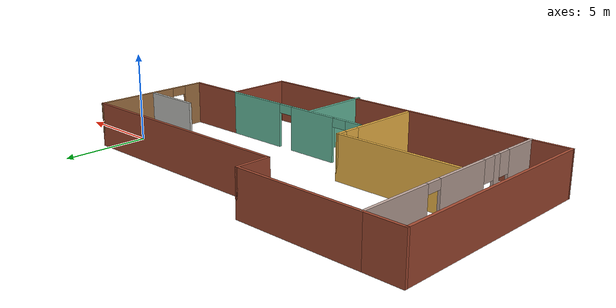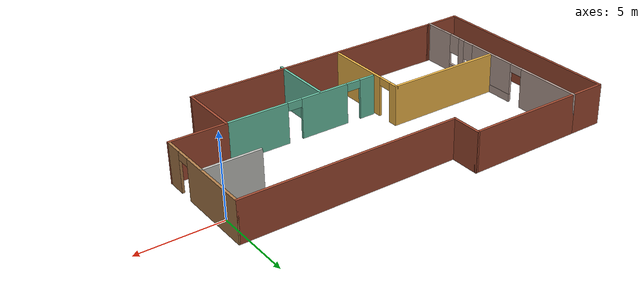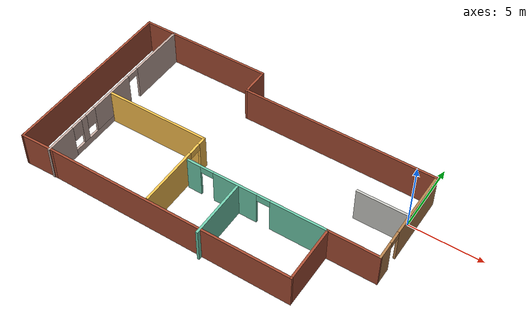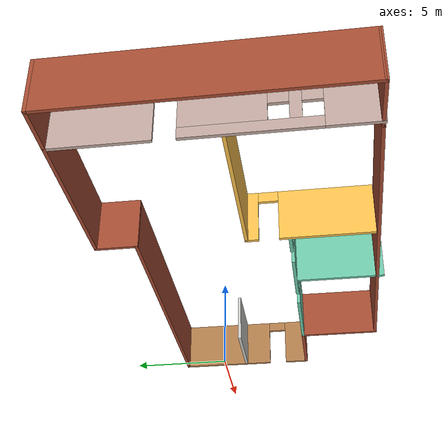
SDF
<?xml version='1.0'?>
<sdf version='1.7'>
  <model name='myhouse'>
    <pose>-10.7843 -2.38564 0 0 -0 0</pose>
    <link name='Wall_0'>
      <pose>-9.17421 0.100699 0 0 -0 1.5708</pose>
      <visual name='Wall_0_Visual_0'>
        <pose>-5.2782 0 1.25 0 -0 0</pose>
        <geometry>
          <box>
            <size>2.1936 0.15 2.5</size>
          </box>
        </geometry>
        <material>
          <script>
            <uri>file://media/materials/scripts/gazebo.material</uri>
            <name>Gazebo/Grey</name>
          </script>
          <ambient>0.760784 0.662745 0.627451 1</ambient>
        </material>
        <meta>
          <layer>0</layer>
        </meta>
      </visual>
      <collision name='Wall_0_Collision_0'>
        <geometry>
          <box>
            <size>2.1936 0.15 2.5</size>
          </box>
        </geometry>
        <pose>-5.2782 0 1.25 0 -0 0</pose>
      </collision>
      <visual name='Wall_0_Visual_1'>
        <pose>4.2818 0 1.25 0 -0 0</pose>
        <geometry>
          <box>
            <size>4.1864 0.15 2.5</size>
          </box>
        </geometry>
        <material>
          <script>
            <uri>file://media/materials/scripts/gazebo.material</uri>
            <name>Gazebo/Grey</name>
          </script>
          <ambient>0.760784 0.662745 0.627451 1</ambient>
        </material>
        <meta>
          <layer>0</layer>
        </meta>
      </visual>
      <collision name='Wall_0_Collision_1'>
        <geometry>
          <box>
            <size>4.1864 0.15 2.5</size>
          </box>
        </geometry>
        <pose>4.2818 0 1.25 0 -0 0</pose>
      </collision>
      <visual name='Wall_0_Visual_2'>
        <pose>-1.4464 0 0.25 0 -0 0</pose>
        <geometry>
          <box>
            <size>5.47 0.15 0.5</size>
          </box>
        </geometry>
        <material>
          <script>
            <uri>file://media/materials/scripts/gazebo.material</uri>
            <name>Gazebo/Grey</name>
          </script>
          <ambient>0.760784 0.662745 0.627451 1</ambient>
        </material>
        <meta>
          <layer>0</layer>
        </meta>
      </visual>
      <collision name='Wall_0_Collision_2'>
        <geometry>
          <box>
            <size>5.47 0.15 0.5</size>
          </box>
        </geometry>
        <pose>-1.4464 0 0.25 0 -0 0</pose>
      </collision>
      <visual name='Wall_0_Visual_3'>
        <pose>-3.14315 0 1.5 0 -0 0</pose>
        <geometry>
          <box>
            <size>0.4765 0.15 2</size>
          </box>
        </geometry>
        <material>
          <script>
            <uri>file://media/materials/scripts/gazebo.material</uri>
            <name>Gazebo/Grey</name>
          </script>
          <ambient>0.760784 0.662745 0.627451 1</ambient>
        </material>
        <meta>
          <layer>0</layer>
        </meta>
      </visual>
      <collision name='Wall_0_Collision_3'>
        <geometry>
          <box>
            <size>0.4765 0.15 2</size>
          </box>
        </geometry>
        <pose>-3.14315 0 1.5 0 -0 0</pose>
      </collision>
      <visual name='Wall_0_Visual_4'>
        <pose>-0.408149 0 1.5 0 -0 0</pose>
        <geometry>
          <box>
            <size>3.3935 0.15 2</size>
          </box>
        </geometry>
        <material>
          <script>
            <uri>file://media/materials/scripts/gazebo.material</uri>
            <name>Gazebo/Grey</name>
          </script>
          <ambient>0.760784 0.662745 0.627451 1</ambient>
        </material>
        <meta>
          <layer>0</layer>
        </meta>
      </visual>
      <collision name='Wall_0_Collision_4'>
        <geometry>
          <box>
            <size>3.3935 0.15 2</size>
          </box>
        </geometry>
        <pose>-0.408149 0 1.5 0 -0 0</pose>
      </collision>
      <visual name='Wall_0_Visual_5'>
        <pose>-3.7814 0 1.9 0 -0 0</pose>
        <geometry>
          <box>
            <size>0.8 0.15 1.2</size>
          </box>
        </geometry>
        <material>
          <script>
            <uri>file://media/materials/scripts/gazebo.material</uri>
            <name>Gazebo/Grey</name>
          </script>
          <ambient>0.760784 0.662745 0.627451 1</ambient>
        </material>
        <meta>
          <layer>0</layer>
        </meta>
      </visual>
      <collision name='Wall_0_Collision_5'>
        <geometry>
          <box>
            <size>0.8 0.15 1.2</size>
          </box>
        </geometry>
        <pose>-3.7814 0 1.9 0 -0 0</pose>
      </collision>
      <visual name='Wall_0_Visual_6'>
        <pose>-2.5049 0 1.9 0 -0 0</pose>
        <geometry>
          <box>
            <size>0.8 0.15 1.2</size>
          </box>
        </geometry>
        <material>
          <script>
            <uri>file://media/materials/scripts/gazebo.material</uri>
            <name>Gazebo/Grey</name>
          </script>
          <ambient>0.760784 0.662745 0.627451 1</ambient>
        </material>
        <meta>
          <layer>0</layer>
        </meta>
      </visual>
      <collision name='Wall_0_Collision_6'>
        <geometry>
          <box>
            <size>0.8 0.15 1.2</size>
          </box>
        </geometry>
        <pose>-2.5049 0 1.9 0 -0 0</pose>
      </collision>
      <visual name='Wall_0_Visual_7'>
        <pose>1.7386 0 2.25 0 -0 0</pose>
        <geometry>
          <box>
            <size>0.9 0.15 0.5</size>
          </box>
        </geometry>
        <material>
          <script>
            <uri>file://media/materials/scripts/gazebo.material</uri>
            <name>Gazebo/Grey</name>
          </script>
          <ambient>0.760784 0.662745 0.627451 1</ambient>
        </material>
        <meta>
          <layer>0</layer>
        </meta>
      </visual>
      <collision name='Wall_0_Collision_7'>
        <geometry>
          <box>
            <size>0.9 0.15 0.5</size>
          </box>
        </geometry>
        <pose>1.7386 0 2.25 0 -0 0</pose>
      </collision>
    </link>
    <link name='Wall_1'>
      <collision name='Wall_1_Collision'>
        <geometry>
          <box>
            <size>7.25 0.15 2.5</size>
          </box>
        </geometry>
        <pose>0 0 1.25 0 -0 0</pose>
      </collision>
      <visual name='Wall_1_Visual'>
        <pose>0 0 1.25 0 -0 0</pose>
        <geometry>
          <box>
            <size>7.25 0.15 2.5</size>
          </box>
        </geometry>
        <material>
          <script>
            <uri>file://media/materials/scripts/gazebo.material</uri>
            <name>Gazebo/Bricks</name>
          </script>
          <ambient>1 1 1 1</ambient>
        </material>
        <meta>
          <layer>0</layer>
        </meta>
      </visual>
      <pose>-5.62421 6.4007 0 0 -0 0</pose>
    </link>
    <link name='Wall_10'>
      <pose>-1.92135 -3.16828 0 0 -0 -1.5708</pose>
      <visual name='Wall_10_Visual_0'>
        <pose>-2.56204 0 1.25 0 -0 0</pose>
        <geometry>
          <box>
            <size>0.62592 0.15 2.5</size>
          </box>
        </geometry>
        <material>
          <script>
            <uri>file://media/materials/scripts/gazebo.material</uri>
            <name>Gazebo/Grey</name>
          </script>
          <ambient>1 0.764706 0.305882 1</ambient>
        </material>
        <meta>
          <layer>0</layer>
        </meta>
      </visual>
      <collision name='Wall_10_Collision_0'>
        <geometry>
          <box>
            <size>0.62592 0.15 2.5</size>
          </box>
        </geometry>
        <pose>-2.56204 0 1.25 0 -0 0</pose>
      </collision>
      <visual name='Wall_10_Visual_1'>
        <pose>0.76296 0 1.25 0 -0 0</pose>
        <geometry>
          <box>
            <size>4.22408 0.15 2.5</size>
          </box>
        </geometry>
        <material>
          <script>
            <uri>file://media/materials/scripts/gazebo.material</uri>
            <name>Gazebo/Grey</name>
          </script>
          <ambient>1 0.764706 0.305882 1</ambient>
        </material>
        <meta>
          <layer>0</layer>
        </meta>
      </visual>
      <collision name='Wall_10_Collision_1'>
        <geometry>
          <box>
            <size>4.22408 0.15 2.5</size>
          </box>
        </geometry>
        <pose>0.76296 0 1.25 0 -0 0</pose>
      </collision>
      <visual name='Wall_10_Visual_2'>
        <pose>-1.79908 0 2.25 0 -0 0</pose>
        <geometry>
          <box>
            <size>0.9 0.15 0.5</size>
          </box>
        </geometry>
        <material>
          <script>
            <uri>file://media/materials/scripts/gazebo.material</uri>
            <name>Gazebo/Grey</name>
          </script>
          <ambient>1 0.764706 0.305882 1</ambient>
        </material>
        <meta>
          <layer>0</layer>
        </meta>
      </visual>
      <collision name='Wall_10_Collision_2'>
        <geometry>
          <box>
            <size>0.9 0.15 0.5</size>
          </box>
        </geometry>
        <pose>-1.79908 0 2.25 0 -0 0</pose>
      </collision>
    </link>
    <link name='Wall_12'>
      <collision name='Wall_12_Collision'>
        <geometry>
          <box>
            <size>2.25 0.15 2.5</size>
          </box>
        </geometry>
        <pose>0 0 1.25 0 -0 0</pose>
      </collision>
      <visual name='Wall_12_Visual'>
        <pose>0 0 1.25 0 -0 0</pose>
        <geometry>
          <box>
            <size>2.25 0.15 2.5</size>
          </box>
        </geometry>
        <material>
          <script>
            <uri>file://media/materials/scripts/gazebo.material</uri>
            <name>Gazebo/Bricks</name>
          </script>
          <ambient>1 1 1 1</ambient>
        </material>
        <meta>
          <layer>0</layer>
        </meta>
      </visual>
      <pose>-10.2242 6.4007 0 0 -0 3.14159</pose>
    </link>
    <link name='Wall_13'>
      <collision name='Wall_13_Collision'>
        <geometry>
          <box>
            <size>12.75 0.15 2.5</size>
          </box>
        </geometry>
        <pose>0 0 1.25 0 -0 0</pose>
      </collision>
      <visual name='Wall_13_Visual'>
        <pose>0 0 1.25 0 -0 0</pose>
        <geometry>
          <box>
            <size>12.75 0.15 2.5</size>
          </box>
        </geometry>
        <material>
          <script>
            <uri>file://media/materials/scripts/gazebo.material</uri>
            <name>Gazebo/Bricks</name>
          </script>
          <ambient>1 1 1 1</ambient>
        </material>
        <meta>
          <layer>0</layer>
        </meta>
      </visual>
      <pose>-11.2742 0.100699 0 0 -0 -1.5708</pose>
    </link>
    <link name='Wall_14'>
      <collision name='Wall_14_Collision'>
        <geometry>
          <box>
            <size>2.50053 0.15 2.5</size>
          </box>
        </geometry>
        <pose>0 0 1.25 0 -0 0</pose>
      </collision>
      <visual name='Wall_14_Visual'>
        <pose>0 0 1.25 0 -0 0</pose>
        <geometry>
          <box>
            <size>2.50053 0.15 2.5</size>
          </box>
        </geometry>
        <material>
          <script>
            <uri>file://media/materials/scripts/gazebo.material</uri>
            <name>Gazebo/Bricks</name>
          </script>
          <ambient>1 1 1 1</ambient>
        </material>
        <meta>
          <layer>0</layer>
        </meta>
      </visual>
      <pose>-10.0992 -6.1743 0 0 -0 0.021273</pose>
    </link>
    <link name='Wall_16'>
      <pose>3.12579 -2.2993 0 0 -0 3.14159</pose>
      <visual name='Wall_16_Visual_0'>
        <pose>-2.92576 0 1.25 0 -0 0</pose>
        <geometry>
          <box>
            <size>3.89848 0.15 2.5</size>
          </box>
        </geometry>
        <material>
          <script>
            <uri>file://media/materials/scripts/gazebo.material</uri>
            <name>Gazebo/Grey</name>
          </script>
          <ambient>0.435294 0.796078 0.67451 1</ambient>
        </material>
        <meta>
          <layer>0</layer>
        </meta>
      </visual>
      <collision name='Wall_16_Collision_0'>
        <geometry>
          <box>
            <size>3.89848 0.15 2.5</size>
          </box>
        </geometry>
        <pose>-2.92576 0 1.25 0 -0 0</pose>
      </collision>
      <visual name='Wall_16_Visual_1'>
        <pose>1.45723 0 1.25 0 -0 0</pose>
        <geometry>
          <box>
            <size>3.0675 0.15 2.5</size>
          </box>
        </geometry>
        <material>
          <script>
            <uri>file://media/materials/scripts/gazebo.material</uri>
            <name>Gazebo/Grey</name>
          </script>
          <ambient>0.435294 0.796078 0.67451 1</ambient>
        </material>
        <meta>
          <layer>0</layer>
        </meta>
      </visual>
      <collision name='Wall_16_Collision_1'>
        <geometry>
          <box>
            <size>3.0675 0.15 2.5</size>
          </box>
        </geometry>
        <pose>1.45723 0 1.25 0 -0 0</pose>
      </collision>
      <visual name='Wall_16_Visual_2'>
        <pose>4.38299 0 1.25 0 -0 0</pose>
        <geometry>
          <box>
            <size>0.984022 0.15 2.5</size>
          </box>
        </geometry>
        <material>
          <script>
            <uri>file://media/materials/scripts/gazebo.material</uri>
            <name>Gazebo/Grey</name>
          </script>
          <ambient>0.435294 0.796078 0.67451 1</ambient>
        </material>
        <meta>
          <layer>0</layer>
        </meta>
      </visual>
      <collision name='Wall_16_Collision_2'>
        <geometry>
          <box>
            <size>0.984022 0.15 2.5</size>
          </box>
        </geometry>
        <pose>4.38299 0 1.25 0 -0 0</pose>
      </collision>
      <visual name='Wall_16_Visual_3'>
        <pose>-0.526522 0 2.25 0 -0 0</pose>
        <geometry>
          <box>
            <size>0.9 0.15 0.5</size>
          </box>
        </geometry>
        <material>
          <script>
            <uri>file://media/materials/scripts/gazebo.material</uri>
            <name>Gazebo/Grey</name>
          </script>
          <ambient>0.435294 0.796078 0.67451 1</ambient>
        </material>
        <meta>
          <layer>0</layer>
        </meta>
      </visual>
      <collision name='Wall_16_Collision_3'>
        <geometry>
          <box>
            <size>0.9 0.15 0.5</size>
          </box>
        </geometry>
        <pose>-0.526522 0 2.25 0 -0 0</pose>
      </collision>
      <visual name='Wall_16_Visual_4'>
        <pose>3.44098 0 2.25 0 -0 0</pose>
        <geometry>
          <box>
            <size>0.9 0.15 0.5</size>
          </box>
        </geometry>
        <material>
          <script>
            <uri>file://media/materials/scripts/gazebo.material</uri>
            <name>Gazebo/Grey</name>
          </script>
          <ambient>0.435294 0.796078 0.67451 1</ambient>
        </material>
        <meta>
          <layer>0</layer>
        </meta>
      </visual>
      <collision name='Wall_16_Collision_4'>
        <geometry>
          <box>
            <size>0.9 0.15 0.5</size>
          </box>
        </geometry>
        <pose>3.44098 0 2.25 0 -0 0</pose>
      </collision>
    </link>
    <link name='Wall_18'>
      <collision name='Wall_18_Collision'>
        <geometry>
          <box>
            <size>4.25 0.15 2.5</size>
          </box>
        </geometry>
        <pose>0 0 1.25 0 -0 0</pose>
      </collision>
      <visual name='Wall_18_Visual'>
        <pose>0 0 1.25 0 -0 0</pose>
        <geometry>
          <box>
            <size>4.25 0.15 2.5</size>
          </box>
        </geometry>
        <material>
          <script>
            <uri>file://media/materials/scripts/gazebo.material</uri>
            <name>Gazebo/Grey</name>
          </script>
          <ambient>0.435294 0.796078 0.67451 1</ambient>
        </material>
        <meta>
          <layer>0</layer>
        </meta>
      </visual>
      <pose>1.89281 -4.3507 0 0 -0 -1.5708</pose>
    </link>
    <link name='Wall_2'>
      <collision name='Wall_2_Collision'>
        <geometry>
          <box>
            <size>2 0.15 2.5</size>
          </box>
        </geometry>
        <pose>0 0 1.25 0 -0 0</pose>
      </collision>
      <visual name='Wall_2_Visual'>
        <pose>0 0 1.25 0 -0 0</pose>
        <geometry>
          <box>
            <size>2 0.15 2.5</size>
          </box>
        </geometry>
        <material>
          <script>
            <uri>file://media/materials/scripts/gazebo.material</uri>
            <name>Gazebo/Bricks</name>
          </script>
          <ambient>1 1 1 1</ambient>
        </material>
        <meta>
          <layer>0</layer>
        </meta>
      </visual>
      <pose>-2.07421 5.4757 0 0 -0 -1.5708</pose>
    </link>
    <link name='Wall_20'>
      <collision name='Wall_20_Collision'>
        <geometry>
          <box>
            <size>3.5 0.15 2.5</size>
          </box>
        </geometry>
        <pose>0 0 1.25 0 -0 0</pose>
      </collision>
      <visual name='Wall_20_Visual'>
        <pose>0 0 1.25 0 -0 0</pose>
        <geometry>
          <box>
            <size>3.5 0.15 2.5</size>
          </box>
        </geometry>
        <material>
          <script>
            <uri>file://media/materials/scripts/gazebo.material</uri>
            <name>Gazebo/CeilingTiled</name>
          </script>
          <ambient>0.435294 0.796078 0.67451 1</ambient>
        </material>
        <meta>
          <layer>0</layer>
        </meta>
      </visual>
      <pose>9.56731 1.1493 0 0 -0 3.14159</pose>
    </link>
    <link name='Wall_3'>
      <collision name='Wall_3_Collision'>
        <geometry>
          <box>
            <size>13.5 0.15 2.5</size>
          </box>
        </geometry>
        <pose>0 0 1.25 0 -0 0</pose>
      </collision>
      <visual name='Wall_3_Visual'>
        <pose>0 0 1.25 0 -0 0</pose>
        <geometry>
          <box>
            <size>13.5 0.15 2.5</size>
          </box>
        </geometry>
        <material>
          <script>
            <uri>file://media/materials/scripts/gazebo.material</uri>
            <name>Gazebo/Bricks</name>
          </script>
          <ambient>1 1 1 1</ambient>
        </material>
        <meta>
          <layer>0</layer>
        </meta>
      </visual>
      <pose>4.60079 4.5507 0 0 -0 0</pose>
    </link>
    <link name='Wall_4'>
      <pose>11.2758 1.1257 0 0 -0 -1.5708</pose>
      <visual name='Wall_4_Visual_0'>
        <pose>-1.07255 0 1.25 0 -0 0</pose>
        <geometry>
          <box>
            <size>4.8549 0.15 2.5</size>
          </box>
        </geometry>
        <material>
          <script>
            <uri>file://media/materials/scripts/gazebo.material</uri>
            <name>Gazebo/Wood</name>
          </script>
          <ambient>1 1 1 1</ambient>
        </material>
        <meta>
          <layer>0</layer>
        </meta>
      </visual>
      <collision name='Wall_4_Collision_0'>
        <geometry>
          <box>
            <size>4.8549 0.15 2.5</size>
          </box>
        </geometry>
        <pose>-1.07255 0 1.25 0 -0 0</pose>
      </collision>
      <visual name='Wall_4_Visual_1'>
        <pose>2.87745 0 1.25 0 -0 0</pose>
        <geometry>
          <box>
            <size>1.2451 0.15 2.5</size>
          </box>
        </geometry>
        <material>
          <script>
            <uri>file://media/materials/scripts/gazebo.material</uri>
            <name>Gazebo/Wood</name>
          </script>
          <ambient>1 1 1 1</ambient>
        </material>
        <meta>
          <layer>0</layer>
        </meta>
      </visual>
      <collision name='Wall_4_Collision_1'>
        <geometry>
          <box>
            <size>1.2451 0.15 2.5</size>
          </box>
        </geometry>
        <pose>2.87745 0 1.25 0 -0 0</pose>
      </collision>
      <visual name='Wall_4_Visual_2'>
        <pose>1.8049 0 2.25 0 -0 0</pose>
        <geometry>
          <box>
            <size>0.9 0.15 0.5</size>
          </box>
        </geometry>
        <material>
          <script>
            <uri>file://media/materials/scripts/gazebo.material</uri>
            <name>Gazebo/Wood</name>
          </script>
          <ambient>1 1 1 1</ambient>
        </material>
        <meta>
          <layer>0</layer>
        </meta>
      </visual>
      <collision name='Wall_4_Collision_2'>
        <geometry>
          <box>
            <size>0.9 0.15 0.5</size>
          </box>
        </geometry>
        <pose>1.8049 0 2.25 0 -0 0</pose>
      </collision>
    </link>
    <link name='Wall_5'>
      <collision name='Wall_5_Collision'>
        <geometry>
          <box>
            <size>3.5 0.15 2.5</size>
          </box>
        </geometry>
        <pose>0 0 1.25 0 -0 0</pose>
      </collision>
      <visual name='Wall_5_Visual'>
        <pose>0 0 1.25 0 -0 0</pose>
        <geometry>
          <box>
            <size>3.5 0.15 2.5</size>
          </box>
        </geometry>
        <material>
          <script>
            <uri>file://media/materials/scripts/gazebo.material</uri>
            <name>Gazebo/Bricks</name>
          </script>
          <ambient>1 1 1 1</ambient>
        </material>
        <meta>
          <layer>0</layer>
        </meta>
      </visual>
      <pose>9.60079 -2.2993 0 0 -0 3.14159</pose>
    </link>
    <link name='Wall_6'>
      <collision name='Wall_6_Collision'>
        <geometry>
          <box>
            <size>4 0.15 2.5</size>
          </box>
        </geometry>
        <pose>0 0 1.25 0 -0 0</pose>
      </collision>
      <visual name='Wall_6_Visual'>
        <pose>0 0 1.25 0 -0 0</pose>
        <geometry>
          <box>
            <size>4 0.15 2.5</size>
          </box>
        </geometry>
        <material>
          <script>
            <uri>file://media/materials/scripts/gazebo.material</uri>
            <name>Gazebo/Bricks</name>
          </script>
          <ambient>1 1 1 1</ambient>
        </material>
        <meta>
          <layer>0</layer>
        </meta>
      </visual>
      <pose>7.92579 -4.2243 0 0 -0 -1.5708</pose>
    </link>
    <link name='Wall_7'>
      <collision name='Wall_7_Collision'>
        <geometry>
          <box>
            <size>17 0.15 2.5</size>
          </box>
        </geometry>
        <pose>0 0 1.25 0 -0 0</pose>
      </collision>
      <visual name='Wall_7_Visual'>
        <pose>0 0 1.25 0 -0 0</pose>
        <geometry>
          <box>
            <size>17 0.15 2.5</size>
          </box>
        </geometry>
        <material>
          <script>
            <uri>file://media/materials/scripts/gazebo.material</uri>
            <name>Gazebo/Bricks</name>
          </script>
          <ambient>1 1 1 1</ambient>
        </material>
        <meta>
          <layer>0</layer>
        </meta>
      </visual>
      <pose>-0.49921 -6.1493 0 0 -0 3.14159</pose>
    </link>
    <link name='Wall_9'>
      <collision name='Wall_9_Collision'>
        <geometry>
          <box>
            <size>7.25 0.15 2.5</size>
          </box>
        </geometry>
        <pose>0 0 1.25 0 -0 0</pose>
      </collision>
      <visual name='Wall_9_Visual'>
        <pose>0 0 1.25 0 -0 0</pose>
        <geometry>
          <box>
            <size>7.25 0.15 2.5</size>
          </box>
        </geometry>
        <material>
          <script>
            <uri>file://media/materials/scripts/gazebo.material</uri>
            <name>Gazebo/Grey</name>
          </script>
          <ambient>1 0.764706 0.305882 1</ambient>
        </material>
        <meta>
          <layer>0</layer>
        </meta>
      </visual>
      <pose>-5.47135 -0.36828 0 0 -0 0</pose>
    </link>
    <static>1</static>
  </model>
</sdf>
